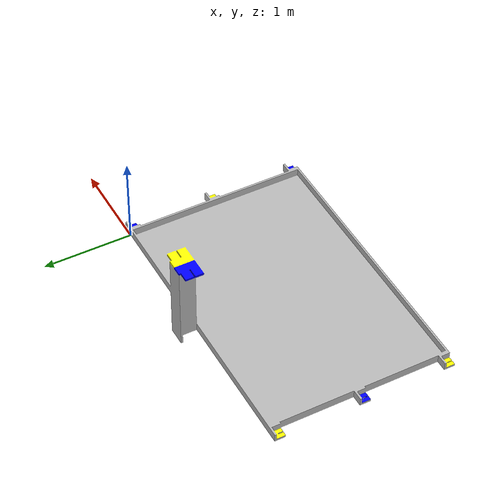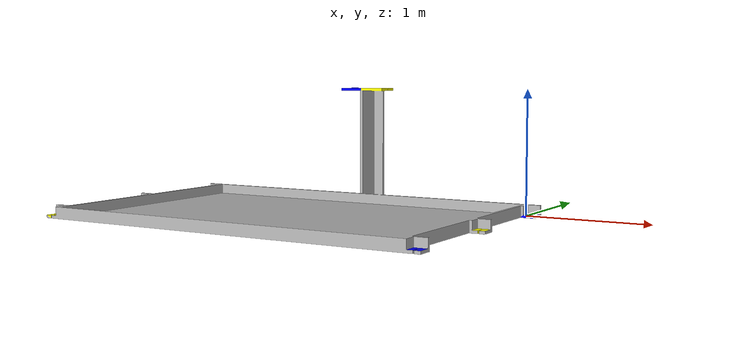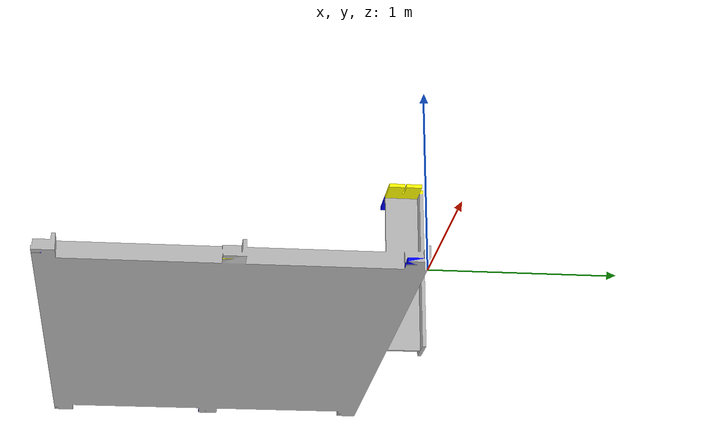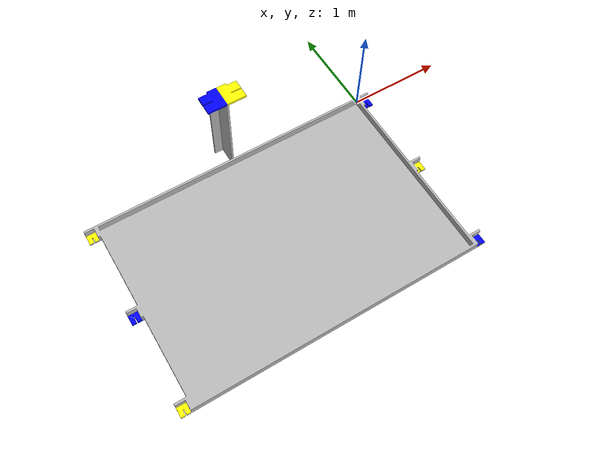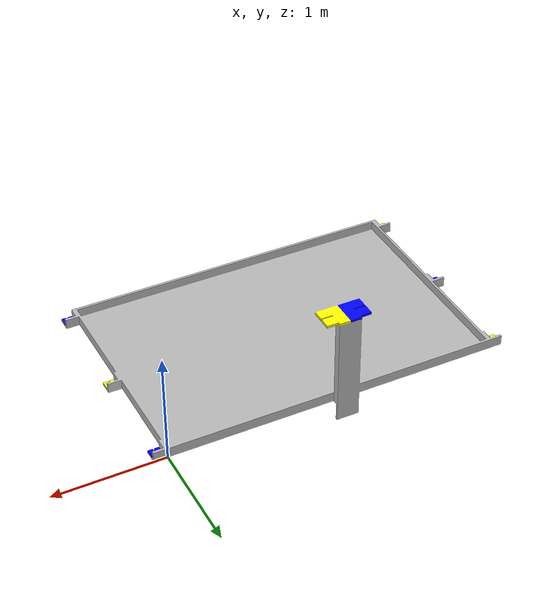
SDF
<?xml version="1.0" ?>
<sdf version="1.5">
  <model name="terrain2020">
    <static>true</static>
    <link name="link">
      <collision name="terrain2020">
        <pose>0 0 0 0 0 0</pose>
        <geometry>
          <mesh>
            <uri>model://terrain2020/terrain2020.dae</uri>
            <scale>1.0 1.0 1.0</scale>
          </mesh>
        </geometry>
      </collision>

      <visual name="rock">
        <cast_shadows>true</cast_shadows>
        <pose>0 0 0 0 0 0</pose>
        <geometry>
          <mesh>
            <uri>model://terrain2020/terrain2020.dae</uri>
            <scale>1.0 1.0 1.0</scale>
          </mesh>
        </geometry>

      </visual>
    </link>
  </model>
</sdf>
